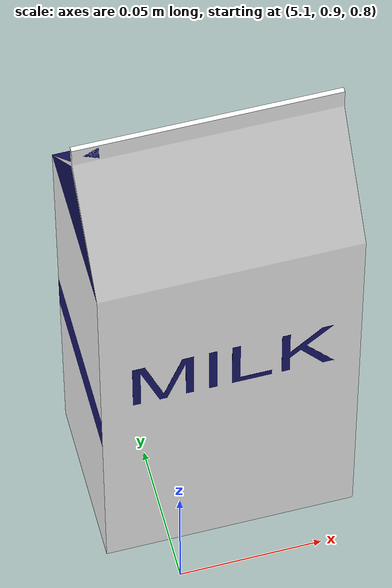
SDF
<?xml version="1.0" ?>
<sdf version="1.4">
  <model name="milk_carton">
    <pose>4.9 1.6 0.8 0 0 -1.57</pose>
    <link name="link">
     <inertial>
	<mass>0.39</mass>
	<pose>0.65 0.22 0.02 0 0 0</pose>
        <inertia>
          <ixx>0.00055575</ixx>
          <ixy>0</ixy>
          <ixz>0</ixz>
          <iyy>0.00055575</iyy>
          <iyz>0</iyz>
          <izz>0.0001755</izz>
	</inertia>
     </inertial>
     <collision name="collision">
        <geometry>
          <mesh>
            <uri>model://milk_carton/meshes/milk_carton.dae</uri>
	    <scale>0.4 0.6 0.6</scale>
          </mesh>
        </geometry>
        <surface>
          <friction>
            <ode>
              <mu>1.0</mu>
              <mu2>1.0</mu2>
            </ode>
          </friction>
          <contact>
            <ode>
              <kp>10000000.0</kp>
              <kd>1.0</kd>
              <min_depth>0.001</min_depth>
              <max_vel>0.1</max_vel>
            </ode>
          </contact>
        </surface>
      </collision>
      <visual name="visual">
        <geometry>
          <mesh>
            <uri>model://milk_carton/meshes/milk_carton.dae</uri>
	    <scale>0.4 0.6 0.6</scale>
          </mesh>
        </geometry>
      </visual>
    </link>
    <static>false</static>
  </model>
</sdf>
